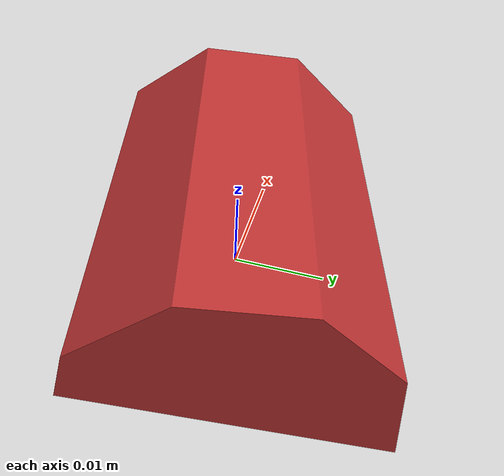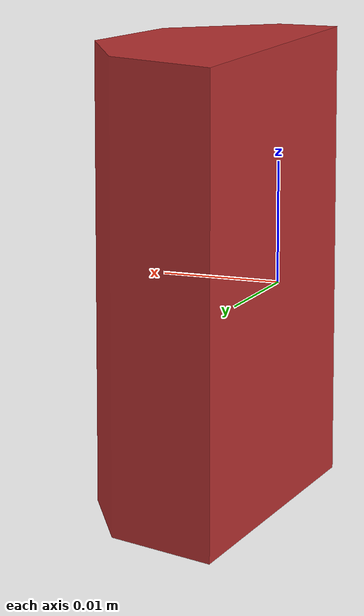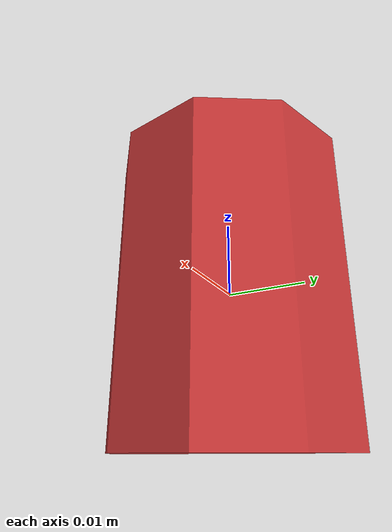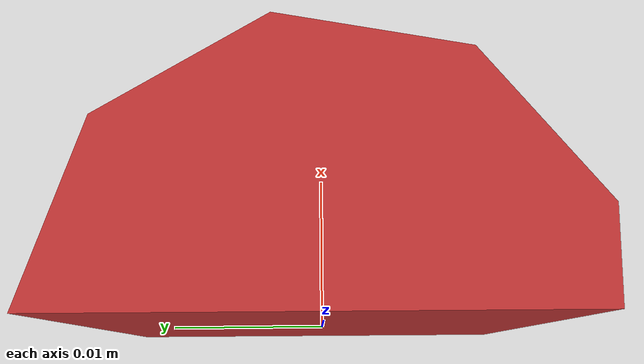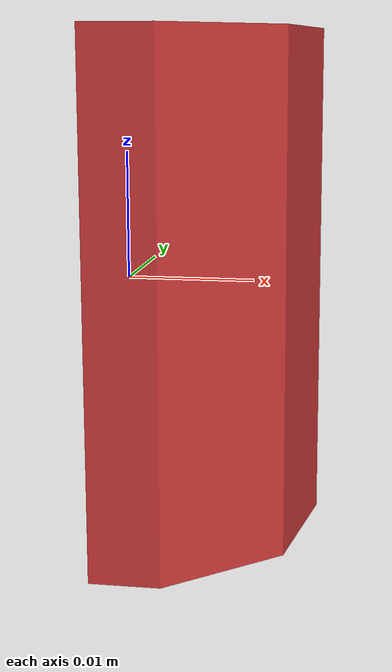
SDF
<?xml version="1.0" ?>
<sdf version='1.6'>
  <model name='cyl_8'>
    <link name='cyl_8'>
      <pose frame=''>0 0 0 0 0 0</pose>
      <inertial>
        <pose frame=''>0.006231 -0.000000 0.000000 0. 0. 0.</pose>
        <mass>1.31645903875e-05</mass>
        <inertia>
          <ixx>2.37102982651e-09</ixx>
          <ixy>-1.21852232865e-12</ixy>
          <ixz>0.0</ixz>
          <iyy>1.85989093391e-09</iyy>
          <iyz>2.75726870851e-26</iyz>
          <izz>9.08433034057e-10</izz>
        </inertia>
      </inertial>
      <visual>
        <pose frame=''>0 0 0 0 0 0</pose>
        <geometry>
          <mesh>
            <scale>1 1 1</scale>
            <uri>models/half_carrot_models/meshes/cyl_8.obj</uri>
          </mesh>
        </geometry>
        <material>
          <ambient>0.75 0.2 0.2 1.0</ambient>
          <diffuse>0.75 0.2 0.2 1.0</diffuse>
          <specular>0.01 0.01 0.01 1</specular>
          <emissive>0 0 0 1</emissive>
          <shader type='vertex'>
            <normal_map>__default__</normal_map>
          </shader>
        </material>
      </visual>
      <collision>
        <pose frame=''>0 0 0 0 0 0</pose>
        <geometry>
          <mesh>
            <scale>1 1 1</scale>
            <uri>models/half_carrot_models/meshes/cyl_8.obj</uri>
          </mesh>
        </geometry>
      </collision>
      <gravity>1</gravity>
      <self_collide>0</self_collide>
    </link>
  </model>
</sdf>
